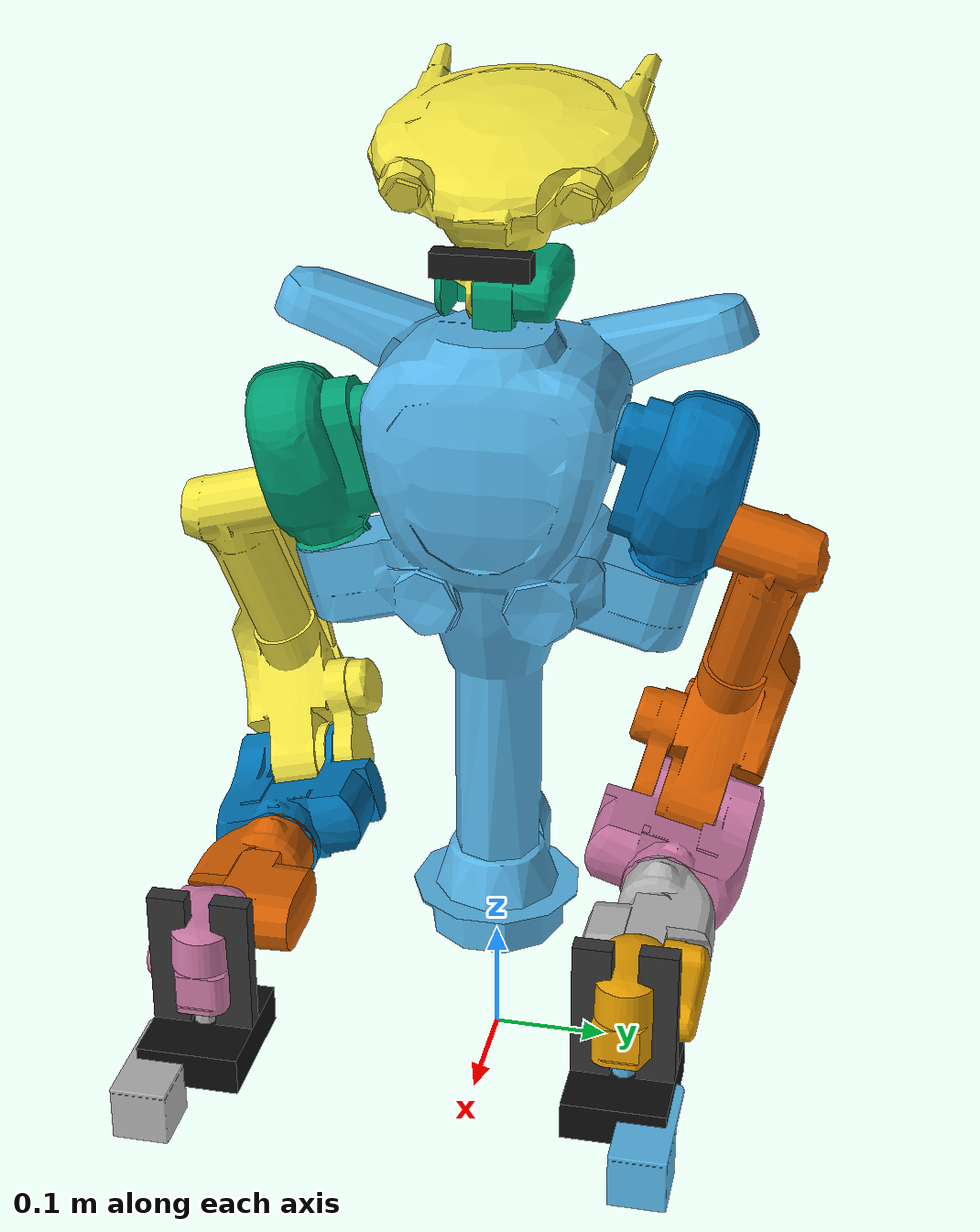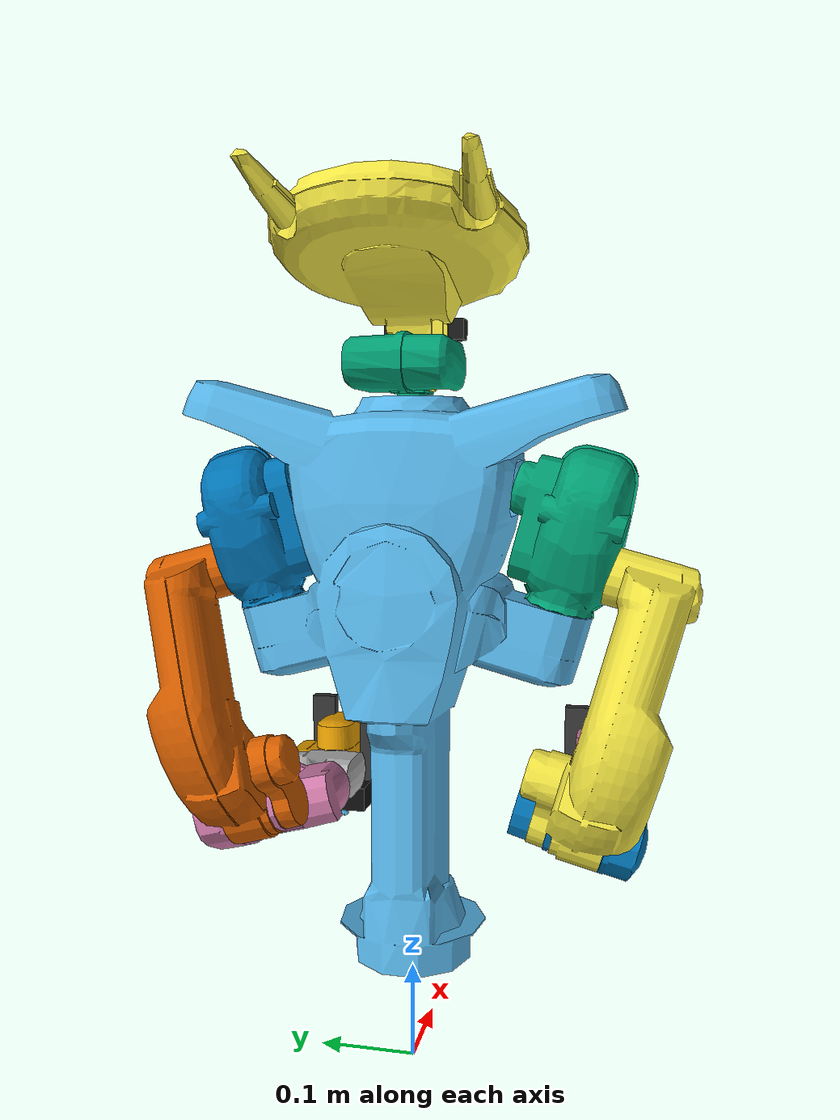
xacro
<?xml version="1.0"?>
<robot xmlns:xacro="http://www.ros.org/wiki/xacro" name="NEXTAGE">
    <!-- Use $(find ...) for portable paths -->
    <xacro:arg name="initial_positions_file"
               default="$(find kawada_moveit_config)/config/initial_positions.yaml" />

    <!-- Set to true if using Gazebo, false for fake hardware -->
    <xacro:arg name="use_gazebo" default="true" />

    <!-- Conditionally include Gazebo plugin only if using Gazebo -->
    <xacro:if value="$(arg use_gazebo)">
        <gazebo>
            <plugin filename="ign_ros2_control-system"
                    name="ign_ros2_control::IgnitionROS2ControlPlugin">
                <parameters>$(find kawada_moveit_config)/config/ros_controllers.yaml</parameters>
            </plugin>
        </gazebo>
    </xacro:if>

    <!-- Import NEXTAGE urdf file -->
    <xacro:include filename="$(find nextage_fillie_open_description)/urdf/FillieOpen.urdf" />

    <!-- Import cameras -->
    <xacro:include filename="$(find kawada_moveit_config)/config/cameras.xacro"/>

    <!-- Import new gripper -->
    <xacro:include filename="$(find nextage_fillie_open_description)/urdf/robotiq_2f_140_gripper.xacro"/>

    <!-- Import ros2_control macros -->
    <xacro:include filename="$(find kawada_moveit_config)/config/NEXTAGE.ros2_control.xacro"/>
    <xacro:include filename="$(find kawada_moveit_config)/config/NEXTAGE_Left.ros2_control.xacro"/>

    <!-- Instantiate the ros2_control macros for both arms -->
    <xacro:NEXTAGE_ros2_control
        name="RightArmSystem"
        initial_positions_file="$(arg initial_positions_file)"/>

    <xacro:NEXTAGE_Left_ros2_control
        name="LeftArmSystem"
        initial_positions_file="$(arg initial_positions_file)"/>

    <!-- Add grippers to both arms -->
    <xacro:robotiq_gripper prefix="right" parent="RARM_JOINT5_Link">
        <origin xyz="0 0 0" rpy="0 0 0"/>
    </xacro:robotiq_gripper>

    <xacro:robotiq_gripper prefix="left" parent="LARM_JOINT5_Link">
        <origin xyz="0 0 0" rpy="0 0 0"/>
    </xacro:robotiq_gripper>

</robot>

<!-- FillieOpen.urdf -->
<robot name="NEXTAGE"
			 xmlns:xi="http://www.w3.org/2001/xinclude"
			 xmlns:gazebo="http://playerstage.sourceforge.net/gazebo/xmlschema/#gz"
			 xmlns:model="http://playerstage.sourceforge.net/gazebo/xmlschema/#model"
			 xmlns:sensor="http://playerstage.sourceforge.net/gazebo/xmlschema/#sensor"
			 xmlns:body="http://playerstage.sourceforge.net/gazebo/xmlschema/#body"
			 xmlns:geom="http://playerstage.sourceforge.net/gazebo/xmlschema/#geom"
			 xmlns:joint="http://playerstage.sourceforge.net/gazebo/xmlschema/#joint"
			 xmlns:interface="http://playerstage.sourceforge.net/gazebo/xmlschema/#interface"
			 xmlns:rendering="http://playerstage.sourceforge.net/gazebo/xmlschema/#rendering"
			 xmlns:renderable="http://playerstage.sourceforge.net/gazebo/xmlschema/#renderable"
			 xmlns:controller="http://playerstage.sourceforge.net/gazebo/xmlschema/#controller"
			 xmlns:physics="http://playerstage.sourceforge.net/gazebo/xmlschema/#physics"
			 xmlns:xacro="http://www.ros.org/wiki/xacro">
	<xacro:include filename="$(find nextage_fillie_open_description)/urdf/materials.urdf.xacro" />

	<!-- Used for fixing robot to Gazebo 'base_link' -->
	<link name="world"/>
	<joint name="fixed" type="fixed">
		 <parent link="world"/>
		 <child link="CHEST_JOINT0_Link"/>
	</joint>

	<link name="CHEST_JOINT0_Link">
		<visual>
			<origin xyz="0 0 0" rpy="0 0 0"/>
			<geometry>
				<mesh filename="file://$(find nextage_fillie_open_description)/urdf/meshes/visual/CHEST_JOINT0_Link_mesh.obj"/>
			</geometry>
		</visual>
		<collision>
			<origin xyz="0 0 0" rpy="0 0 0"/>
			<geometry>
				<mesh filename="file://$(find nextage_fillie_open_description)/urdf/meshes/CHEST_JOINT0_Link_mesh.dae"/>
			</geometry>
		</collision>
			 <inertial>
			<mass value="5.719" />
			<origin xyz="0 0 0" rpy="0 -0 0"/>
			<inertia ixx="0.0639575" ixy="-0.00022833" ixz="0.00011172" iyy="0.0310845" iyz="6.48e-05" izz="0.0501107"/>
		</inertial>
	</link>

	<link name="HEAD_JOINT0_Link">
		<visual>
			<origin xyz="0 0 0" rpy="0 0 0"/>
			<geometry>
				<mesh filename="file://$(find nextage_fillie_open_description)/urdf/meshes/visual/HEAD_JOINT0_Link_mesh.obj"/>
			</geometry>
		</visual>
		<collision>
			<origin xyz="0 0 0" rpy="0 0 0"/>
			<geometry>
				<mesh filename="file://$(find nextage_fillie_open_description)/urdf/meshes/HEAD_JOINT0_Link_mesh.dae"/>
			</geometry>
		</collision>
		 <inertial>
			<mass value="0.317929" />
			<origin xyz="-2.292e-05 0.00547848 -0.00784016" rpy="0 -0 0"/>
			<inertia ixx="0.00027682" ixy="3e-08" ixz="-3.3e-07" iyy="0.00013009" iyz="-1.092e-05" izz="0.00020954"/>
		</inertial>
	</link>

	<link name="HEAD_JOINT1_Link">
		<visual>
			<origin xyz="0 0 0" rpy="0 0 0"/>
			<geometry>
				<mesh filename="file://$(find nextage_fillie_open_description)/urdf/meshes/visual/HEAD_JOINT1_Link_mesh.obj"/>
			</geometry>
		</visual>
		<collision>
			<origin xyz="0 0 0" rpy="0 0 0"/>
			<geometry>
				<mesh filename="file://$(find nextage_fillie_open_description)/urdf/meshes/HEAD_JOINT1_Link_mesh.dae"/>
			</geometry>
		</collision>
		<inertial>
			<mass value="0.0808593" />
			<inertia ixx="1e-3" ixy="0" ixz="0" iyy="1e-3" iyz="0" izz="1e-3"/>
		</inertial>
	</link>

	<link name="LARM_JOINT0_Link">
		<visual>
			<origin xyz="0 0 0" rpy="0 0 0"/>
			<geometry>
				<mesh filename="file://$(find nextage_fillie_open_description)/urdf/meshes/visual/LARM_JOINT0_Link_mesh.obj"/>
			</geometry>
		</visual>
		<collision>
			<origin xyz="0 0 0" rpy="0 0 0"/>
			<geometry>
				<mesh filename="file://$(find nextage_fillie_open_description)/urdf/meshes/LARM_JOINT0_Link_mesh.dae"/>
			</geometry>
		</collision>
			<inertial>
			<mass value="1.32626" />
			<origin xyz="-0.00226388 -0.00521383 0.0156081" rpy="0 -0 0"/>
			<inertia ixx="0.00207537" ixy="0.00011276" ixz="8.927e-05" iyy="0.00240295" iyz="-4.57e-05" izz="0.00141912"/>
		</inertial>
	</link>

	<link name="LARM_JOINT1_Link">
		<visual>
			<origin xyz="0 0 0" rpy="0 0 0"/>
			<geometry>
				<mesh filename="file://$(find nextage_fillie_open_description)/urdf/meshes/visual/LARM_JOINT1_Link_mesh.obj"/>
			</geometry>
		</visual>
		<collision>
			<origin xyz="0 0 0" rpy="0 0 0"/>
			<geometry>
				<mesh filename="file://$(find nextage_fillie_open_description)/urdf/meshes/LARM_JOINT1_Link_mesh.dae"/>
			</geometry>
		</collision>
		 <inertial>
			<mass value="1.14898" />
			<origin xyz="-5.236e-05 0.0583134 -0.107061" rpy="0 -0 0"/>
			<inertia ixx="0.0154168" ixy="9.95417e-07" ixz="3.38147e-06" iyy="0.0147117" iyz="0.00213719" izz="0.0012658"/>
		</inertial>
	</link>

	<link name="LARM_JOINT2_Link">
		<visual>
			<origin xyz="0 0 0" rpy="0 0 0"/>
			<geometry>
				<mesh filename="file://$(find nextage_fillie_open_description)/urdf/meshes/visual/LARM_JOINT2_Link_mesh.obj"/>
			</geometry>
		</visual>
		<collision>
			<origin xyz="0 0 0" rpy="0 0 0"/>
			<geometry>
				<mesh filename="file://$(find nextage_fillie_open_description)/urdf/meshes/LARM_JOINT2_Link_mesh.dae"/>
			</geometry>
		</collision>
			<inertial>
			<mass value="0.577518" />
			<origin xyz="-2.254e-05 0.00167107 -0.0715116" rpy="0 -0 0"/>
			<inertia ixx="0.00143966" ixy="-3e-07" ixz="1.2e-06" iyy="0.00141763" iyz="-7.596e-05" izz="0.0001972"/>
		</inertial>
	</link>

	<link name="LARM_JOINT3_Link">
		<visual>
			<origin xyz="0 0 0" rpy="0 0 0"/>
			<geometry>
				<mesh filename="file://$(find nextage_fillie_open_description)/urdf/meshes/visual/LARM_JOINT3_Link_mesh.obj"/>
			</geometry>
		</visual>
		<collision>
			<origin xyz="0 0 0" rpy="0 0 0"/>
			<geometry>
				<mesh filename="file://$(find nextage_fillie_open_description)/urdf/meshes/LARM_JOINT3_Link_mesh.dae"/>
			</geometry>
		</collision>
			<inertial>
			<mass value="0.457418" />
			<origin xyz="-1.788e-05 -0.00395812 -0.20273" rpy="0 -0 0"/>
			<inertia ixx="0.00069205" ixy="3e-08" ixz="5.2e-07" iyy="0.00068903" iyz="-1.915e-05" izz="0.00013509"/>
		</inertial>
	</link>

	<link name="LARM_JOINT4_Link">
		<visual>
			<origin xyz="0 0 0" rpy="0 0 0"/>
			<geometry>
				<mesh filename="file://$(find nextage_fillie_open_description)/urdf/meshes/visual/LARM_JOINT4_Link_mesh.obj"/>
			</geometry>
		</visual>
		<collision>
			<origin xyz="0 0 0" rpy="0 0 0"/>
			<geometry>
				<mesh filename="file://$(find nextage_fillie_open_description)/urdf/meshes/LARM_JOINT4_Link_mesh.dae"/>
			</geometry>
		</collision>
		<inertial>
			<mass value="0.418434" />
			<origin xyz="0.00243131 0.00379733 -0.0577036" rpy="0 -0 0"/>
			<inertia ixx="0.00052016" ixy="1.69e-06" ixz="7.9e-06" iyy="0.00050569" iyz="-5.377e-05" izz="0.00014004"/>
		</inertial>
	</link>

	<link name="LARM_JOINT5_Link">
		<visual>
			<origin xyz="0 0 0" rpy="0 0 0"/>
			<geometry>
				<mesh filename="file://$(find nextage_fillie_open_description)/urdf/meshes/visual/LARM_JOINT5_Link_mesh.obj"/>
			</geometry>
		</visual>
		<visual>
			<origin xyz="0 0 0" rpy="0 0 0"/>
			<geometry>
				<mesh filename="file://$(find nextage_fillie_open_description)/urdf/meshes/visual/L_CAM.obj"/>
			</geometry>
		</visual>
		<collision>
			<origin xyz="0 0 0" rpy="0 0 0"/>
			<geometry>
				<mesh filename="file://$(find nextage_fillie_open_description)/urdf/meshes/visual/LARM_JOINT5_Link_mesh.obj"/>
			</geometry>
		</collision>
		<collision>
			<origin xyz="0 0 0" rpy="0 0 0"/>
			<geometry>
				<mesh filename="file://$(find nextage_fillie_open_description)/urdf/meshes/L_CAM.dae"/>
			</geometry>
		</collision>
			<inertial>
			<mass value="1.05156" />
			<origin xyz="-0.048476 -3.2e-06 -0.0388988" rpy="0 -0 0"/>
			<inertia ixx="0.00194072" ixy="1.1e-07" ixz="-0.00042482" iyy="0.00209392" iyz="1.2e-07" izz="0.00035788"/>
		</inertial>
	</link>

	<link name="RARM_JOINT0_Link">
		<visual>
			<origin xyz="0 0 0" rpy="0 0 0"/>
			<geometry>
				<mesh filename="file://$(find nextage_fillie_open_description)/urdf/meshes/visual/RARM_JOINT0_Link_mesh.obj"/>
			</geometry>
		</visual>
		<collision>
			<origin xyz="0 0 0" rpy="0 0 0"/>
			<geometry>
				<mesh filename="file://$(find nextage_fillie_open_description)/urdf/meshes/RARM_JOINT0_Link_mesh.dae"/>
			</geometry>
		</collision>
			 <inertial>
			<mass value="1.32626" />
			<origin xyz="-0.00226388 0.00521383 0.0156081" rpy="0 -0 0"/>
			<inertia ixx="0.00207537" ixy="-0.00011276" ixz="8.927e-05" iyy="0.00240295" iyz="4.57e-05" izz="0.00141912"/>
		</inertial>
	</link>

	<link name="RARM_JOINT1_Link">
		<visual>
			<origin xyz="0 0 0" rpy="0 0 0"/>
			<geometry>
				<mesh filename="file://$(find nextage_fillie_open_description)/urdf/meshes/visual/RARM_JOINT1_Link_mesh.obj"/>
			</geometry>
		</visual>
		<collision>
			<origin xyz="0 0 0" rpy="0 0 0"/>
			<geometry>
				<mesh filename="file://$(find nextage_fillie_open_description)/urdf/meshes/RARM_JOINT1_Link_mesh.dae"/>
			</geometry>
		</collision>
		 <inertial>
			<mass value="1.14898" />
			<origin xyz="-5.236e-05 -0.0583134 -0.107061" rpy="0 -0 0"/>
			<inertia ixx="0.0154168" ixy="-9.95417e-07" ixz="3.38147e-06" iyy="0.0147117" iyz="-0.00213719" izz="0.0012658"/>
		</inertial>
	</link>

	<link name="RARM_JOINT2_Link">
		<visual>
			<origin xyz="0 0 0" rpy="0 0 0"/>
			<geometry>
				<mesh filename="file://$(find nextage_fillie_open_description)/urdf/meshes/RARM_JOINT2_Link_mesh.dae"/>
			</geometry>
		</visual>
		<collision>
			<origin xyz="0 0 0" rpy="0 0 0"/>
			<geometry>
				<mesh filename="file://$(find nextage_fillie_open_description)/urdf/meshes/RARM_JOINT2_Link_mesh.dae"/>
			</geometry>
		</collision>
		 <inertial>
			<mass value="0.577518" />
			<origin xyz="-2.254e-05 -0.00167107 -0.0715116" rpy="0 -0 0"/>
			<inertia ixx="0.00143966" ixy="3e-07" ixz="1.2e-06" iyy="0.00141763" iyz="7.596e-05" izz="0.0001972"/>
		</inertial>
	</link>

	<link name="RARM_JOINT3_Link">
		<visual>
			<origin xyz="0 0 0" rpy="0 0 0"/>
			<geometry>
				<mesh filename="file://$(find nextage_fillie_open_description)/urdf/meshes/visual/RARM_JOINT3_Link_mesh.obj"/>
			</geometry>
		</visual>
		<collision>
			<origin xyz="0 0 0" rpy="0 0 0"/>
			<geometry>
				<mesh filename="file://$(find nextage_fillie_open_description)/urdf/meshes/RARM_JOINT3_Link_mesh.dae"/>
			</geometry>
		</collision>
			<inertial>
			<mass value="0.457418" />
			<origin xyz="-1.788e-05 0.00395812 -0.20273" rpy="0 -0 0"/>
			<inertia ixx="0.00069205" ixy="-3e-08" ixz="5.2e-07" iyy="0.00068903" iyz="1.915e-05" izz="0.00013509"/>
		</inertial>
	</link>

	<link name="RARM_JOINT4_Link">
		<visual>
			<origin xyz="0 0 0" rpy="0 0 0"/>
			<geometry>
				<mesh filename="file://$(find nextage_fillie_open_description)/urdf/meshes/visual/RARM_JOINT4_Link_mesh.obj"/>
			</geometry>
		</visual>
		<collision>
			<origin xyz="0 0 0" rpy="0 0 0"/>
			<geometry>
				<mesh filename="file://$(find nextage_fillie_open_description)/urdf/meshes/RARM_JOINT4_Link_mesh.dae"/>
			</geometry>
		</collision>
		<inertial>
			<mass value="0.418434" />
			<origin xyz="0.00243131 -0.00379733 -0.0577036" rpy="0 -0 0"/>
			<inertia ixx="0.00052016" ixy="-1.69e-06" ixz="7.9e-06" iyy="0.00050569" iyz="5.377e-05" izz="0.00014004"/>
		</inertial>
	</link>

	<link name="RARM_JOINT5_Link">
		<visual>
			<origin xyz="0 0 0" rpy="0 0 0"/>
			<geometry>
				<mesh filename="file://$(find nextage_fillie_open_description)/urdf/meshes/visual/RARM_JOINT5_Link_mesh.obj"/>
			</geometry>
		</visual>
		<visual>
			<origin xyz="0 0 0" rpy="0 0 0"/>
			<geometry>
				<mesh filename="file://$(find nextage_fillie_open_description)/urdf/meshes/visual/R_CAM.obj"/>
			</geometry>
		</visual>
		<collision>
			<origin xyz="0 0 0" rpy="0 0 0"/>
			<geometry>
				<mesh filename="file://$(find nextage_fillie_open_description)/urdf/meshes/visual/RARM_JOINT5_Link_mesh.obj"/>
			</geometry>
		</collision>
		<collision>
			<origin xyz="0 0 0" rpy="0 0 0"/>
			<geometry>
				<mesh filename="file://$(find nextage_fillie_open_description)/urdf/meshes/R_CAM.dae"/>
			</geometry>
		</collision>
			<inertial>
			<mass value="1.05156" />
			<origin xyz="-0.048476 3.2e-06 -0.0388988" rpy="0 -0 0"/>
			<inertia ixx="0.00194072" ixy="-1.1e-07" ixz="-0.00042482" iyy="0.00209392" iyz="-1.2e-07" izz="0.00035788"/>
		</inertial>
	</link>

	<joint name="HEAD_JOINT0" type="fixed">
		<parent link="CHEST_JOINT0_Link"/>
		<child link="HEAD_JOINT0_Link"/>
		<origin xyz="0 0 0.705" rpy="0 0 0"/>
		<axis xyz="0 0 1"/>
		<limit lower="-1.570796327" upper="1.570796327" effort="100" velocity="1.0"/>
	</joint>

	<joint name="HEAD_JOINT1" type="fixed">
		<parent link="HEAD_JOINT0_Link"/>
		<child link="HEAD_JOINT1_Link"/>
		<origin xyz="0 0 0.0" rpy="0 0 0"/>
		<axis xyz="0 1 0"/>
		<limit lower="-0.401425728" upper="1.308996939" effort="100" velocity="1.0"/>
	</joint>

	<joint name="LARM_JOINT0" type="revolute">
		<parent link="CHEST_JOINT0_Link"/>
		<child link="LARM_JOINT0_Link"/>
		<origin xyz="0.0 0.155 0.520" rpy="-0.26179938779914941 0 0"/>
		<axis xyz="0 0 1"/>
		<limit lower="-1.570796327" upper="1.570796327" effort="150" velocity="1.0"/>
	</joint>

	<joint name="LARM_JOINT1" type="revolute">
		<parent link="LARM_JOINT0_Link"/>
		<child link="LARM_JOINT1_Link"/>
		<origin xyz="0 0.0 0.0" rpy="0 0 0"/>
		<axis xyz="0 1 0"/>
		<limit lower="-2.443460953" upper="1.570796327" effort="150" velocity="1.0"/>
	</joint>

	<joint name="LARM_JOINT2" type="revolute">
		<parent link="LARM_JOINT1_Link"/>
		<child link="LARM_JOINT2_Link"/>
		<origin xyz="0 0.083 -0.250" rpy="0 0 0"/>
		<axis xyz="0 1 0"/>
		<limit lower="-1.221730476" upper="1.570796327" effort="150" velocity="1.0"/>
	</joint>

	<joint name="LARM_JOINT3" type="revolute">
		<parent link="LARM_JOINT2_Link"/>
		<child link="LARM_JOINT3_Link"/>
		<origin xyz="0 0 -0.02" rpy="0.26179938779914941 0 0"/>
		<axis xyz="1 0 0"/>
		<limit lower="-3.141592654" upper="1.745329252" effort="150" velocity="1.0"/>
	</joint>

	<joint name="LARM_JOINT4" type="revolute">
		<parent link="LARM_JOINT3_Link"/>
		<child link="LARM_JOINT4_Link"/>
		<origin xyz="0.230 0 0" rpy="0 0 0"/>
		<axis xyz="0 1 0"/>
		<limit lower="-1.570796327" upper="1.570796327" effort="150" velocity="1.0"/>
	</joint>

	<joint name="LARM_JOINT5" type="revolute">
		<parent link="LARM_JOINT4_Link"/>
		<child link="LARM_JOINT5_Link"/>
		<origin xyz="0.090 0 -0.051" rpy="0 0 0"/>
		<axis xyz="0 0 1"/>
		<limit lower="-2.9670597283903604" upper="2.9670597283903604" effort="150" velocity="1.0"/>
	</joint>

	<joint name="RARM_JOINT0" type="revolute">
		<parent link="CHEST_JOINT0_Link"/>
		<child link="RARM_JOINT0_Link"/>
		<origin xyz="0.0 -0.155 0.520" rpy="0.26179938779914941 0 0"/>
		<axis xyz="0 0 1"/>
		<limit lower="-1.570796327" upper="1.570796327" effort="150" velocity="100.0"/>
	</joint>

	<joint name="RARM_JOINT1" type="revolute">
		<parent link="RARM_JOINT0_Link"/>
		<child link="RARM_JOINT1_Link"/>
		<origin xyz="0 0 0" rpy="0 0 0"/>
		<axis xyz="0 1 0"/>
		<limit lower="-2.443460953" upper="1.570796327" effort="150" velocity="100.0"/>
	</joint>

	<joint name="RARM_JOINT2" type="revolute">
		<parent link="RARM_JOINT1_Link"/>
		<child link="RARM_JOINT2_Link"/>
		<origin xyz="0 -0.083 -0.250" rpy="0 0 0"/>
		<axis xyz="0 1 0"/>
		<limit lower="-1.221730476" upper="1.570796327" effort="150" velocity="100.0"/>
	</joint>

	<joint name="RARM_JOINT3" type="revolute">
		<parent link="RARM_JOINT2_Link"/>
		<child link="RARM_JOINT3_Link"/>
		<origin xyz="0 0 -0.02" rpy="-0.26179938779914941 0 0"/>
		<axis xyz="1 0 0"/>
		<limit lower="-1.745329252" upper="3.141592654" effort="150" velocity="100.0"/>
	</joint>

	<joint name="RARM_JOINT4" type="revolute">
		<parent link="RARM_JOINT3_Link"/>
		<child link="RARM_JOINT4_Link"/>
		<origin xyz="0.230 0 0" rpy="0 0 0"/>
		<axis xyz="0 1 0"/>
		<limit lower="-1.570796327" upper="1.570796327" effort="150" velocity="100.0"/>
	</joint>

	<joint name="RARM_JOINT5" type="revolute">
		<parent link="RARM_JOINT4_Link"/>
		<child link="RARM_JOINT5_Link"/>
		<origin xyz="0.090 0 -0.051" rpy="0 0 0"/>
		<axis xyz="0 0 1"/>
		<limit lower="-2.9670597283903604" upper="2.9670597283903604" effort="150" velocity="100.0"/>
	</joint>

	<!-- Gazebo plugin for ROS Control -->

</robot>

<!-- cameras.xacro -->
<robot xmlns:xacro="http://www.ros.org/wiki/xacro">

  <!-- RGB Camera Sensor on Head -->
  <gazebo reference="HEAD_JOINT1_Link">
    <sensor name="head_camera" type="camera">
      <!-- Pose: x y z roll pitch yaw - tilted down 30 degrees (0.52 rad) to see workspace -->
      <pose>0.05 0 0.05 0 0.52 0</pose>
      <camera>
        <horizontal_fov>1.047</horizontal_fov>
        <image>
          <width>640</width>
          <height>480</height>
          <format>R8G8B8</format>
        </image>
        <clip>
          <near>0.1</near>
          <far>100</far>
        </clip>
      </camera>
      <always_on>1</always_on>
      <update_rate>30</update_rate>
      <visualize>true</visualize>
      <topic>head_camera/image</topic>
    </sensor>
  </gazebo>

  <!-- RGBD Camera Link -->
  <link name="rgbd_camera_link">
    <visual>
      <origin xyz="0 0 0" rpy="0 0 0"/>
      <geometry>
        <box size="0.02 0.08 0.02"/>
      </geometry>
      <material name="camera_material">
        <color rgba="0.1 0.1 0.1 1.0"/>
      </material>
    </visual>
    <collision>
      <origin xyz="0 0 0" rpy="0 0 0"/>
      <geometry>
        <box size="0.02 0.08 0.02"/>
      </geometry>
    </collision>
    <inertial>
      <mass value="0.01"/>
      <origin xyz="0 0 0" rpy="0 0 0"/>
      <inertia ixx="0.0001" ixy="0" ixz="0" iyy="0.0001" iyz="0" izz="0.0001"/>
    </inertial>
  </link>

  <!-- RGBD Camera Joint -->
  <joint name="rgbd_camera_joint" type="fixed">
    <parent link="HEAD_JOINT1_Link"/>
    <child link="rgbd_camera_link"/>
    <origin xyz="0.06 0 0.04" rpy="0 0 0"/>
  </joint>

  <!-- RGBD Camera Optical Frame -->
  <link name="rgbd_camera_optical_link"/>

  <joint name="rgbd_camera_optical_joint" type="fixed">
    <parent link="rgbd_camera_link"/>
    <child link="rgbd_camera_optical_link"/>
    <origin xyz="0 0 0" rpy="${-pi/2} 0 ${-pi/2}"/>
  </joint>

  <!-- RGBD Camera Sensor - Use rgbd_camera type for Ignition Fortress -->
  <gazebo reference="rgbd_camera_link">
    <sensor name="rgbd_camera" type="rgbd_camera">
      <!-- Pose: x y z roll pitch yaw - tilted down 30 degrees (0.52 rad) to see workspace -->
      <pose>0 0 0 0 0.52 0</pose>
      <camera>
        <horizontal_fov>1.047</horizontal_fov>
        <image>
          <width>640</width>
          <height>480</height>
          <format>R8G8B8</format>
        </image>
        <clip>
          <near>0.1</near>
          <far>10.0</far>
        </clip>
      </camera>
      <always_on>1</always_on>
      <update_rate>30</update_rate>
      <visualize>true</visualize>
      <topic>rgbd_camera</topic>
    </sensor>
  </gazebo>

</robot>

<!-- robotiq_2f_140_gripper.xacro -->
<robot xmlns:xacro="http://www.ros.org/wiki/xacro">

  <xacro:macro name="robotiq_gripper" params="prefix parent *origin">

    <!-- Main Gripper Base Link -->
    <link name="${prefix}_gripper_link">
      <visual>
        <origin xyz="0.0 0.0 0.0" rpy="0.0 0.0 0.0" />
        <geometry>
          <box size="0.10 0.08 0.03"/>
        </geometry>
        <material name="black">
          <color rgba="0.05 0.05 0.05 1"/>
        </material>
      </visual>
      <collision>
        <origin xyz="0.0 0.0 0.0" rpy="0.0 0.0 0.0" />
        <geometry>
          <box size="0.10 0.08 0.03"/>
        </geometry>
      </collision>
      <inertial>
        <mass value="0.5"/>
        <origin xyz="0 0 0" rpy="0 0 0"/>
        <inertia ixx="0.001" ixy="0" ixz="0" iyy="0.001" iyz="0" izz="0.001"/>
      </inertial>
    </link>

    <joint name="${prefix}_gripper_base_joint" type="fixed">
      <xacro:insert_block name="origin"/>
      <parent link="${parent}"/>
      <child link="${prefix}_gripper_link"/>
    </joint>

    <!-- Left Finger -->
    <link name="${prefix}_left_finger">
      <visual>
        <origin xyz="0 0 0.055" rpy="0 0 0"/>
        <geometry>
          <box size="0.015 0.03 0.11"/>
        </geometry>
        <material name="dark_grey">
          <color rgba="0.2 0.2 0.2 1.0"/>
        </material>
      </visual>
      <collision>
        <origin xyz="0 0 0.055" rpy="0 0 0"/>
        <geometry>
          <box size="0.015 0.03 0.11"/>
        </geometry>
      </collision>
      <inertial>
        <mass value="0.1"/>
        <origin xyz="0 0 0.055" rpy="0 0 0"/>
        <inertia ixx="0.0001" ixy="0" ixz="0" iyy="0.0001" iyz="0" izz="0.00001"/>
      </inertial>
    </link>

    <!-- Gazebo friction properties for left finger -->
    <gazebo reference="${prefix}_left_finger">
      <mu1>100.0</mu1>
      <mu2>100.0</mu2>
      <kp>1e10</kp>
      <kd>1000</kd>
      <minDepth>0.001</minDepth>
      <maxContacts>20</maxContacts>
    </gazebo>

    <joint name="${prefix}_left_finger_joint" type="prismatic">
      <origin xyz="0 0.025 0.015" rpy="0 0 0"/>
      <parent link="${prefix}_gripper_link"/>
      <child link="${prefix}_left_finger"/>
      <axis xyz="0 1 0"/>
      <limit lower="0.0" upper="0.07" effort="300" velocity="0.5"/>
      <dynamics damping="20.0" friction="2.0"/>
    </joint>

    <!-- Right Finger -->
    <link name="${prefix}_right_finger">
      <visual>
        <origin xyz="0 0 0.055" rpy="0 0 0"/>
        <geometry>
          <box size="0.015 0.03 0.11"/>
        </geometry>
        <material name="dark_grey">
          <color rgba="0.2 0.2 0.2 1.0"/>
        </material>
      </visual>
      <collision>
        <origin xyz="0 0 0.055" rpy="0 0 0"/>
        <geometry>
          <box size="0.015 0.03 0.11"/>
        </geometry>
      </collision>
      <inertial>
        <mass value="0.1"/>
        <origin xyz="0 0 0.055" rpy="0 0 0"/>
        <inertia ixx="0.0001" ixy="0" ixz="0" iyy="0.0001" iyz="0" izz="0.00001"/>
      </inertial>
    </link>

    <!-- Gazebo friction properties for right finger -->
    <gazebo reference="${prefix}_right_finger">
      <mu1>100.0</mu1>
      <mu2>100.0</mu2>
      <kp>1e10</kp>
      <kd>1000</kd>
      <minDepth>0.001</minDepth>
      <maxContacts>20</maxContacts>
    </gazebo>

    <joint name="${prefix}_right_finger_joint" type="prismatic">
      <origin xyz="0 -0.025 0.015" rpy="0 0 0"/>
      <parent link="${prefix}_gripper_link"/>
      <child link="${prefix}_right_finger"/>
      <axis xyz="0 1 0"/>
      <limit lower="-0.07" upper="0.0" effort="300" velocity="0.5"/>
      <dynamics damping="20.0" friction="2.0"/>
      <mimic joint="${prefix}_left_finger_joint" multiplier="-1" offset="0"/>
    </joint>

    <!-- Gripper Tool Center Point (TCP) -->
    <link name="${prefix}_gripper_tcp"/>

    <joint name="${prefix}_gripper_tcp_joint" type="fixed">
      <origin xyz="0 0 0.13" rpy="0 0 0"/>
      <parent link="${prefix}_gripper_link"/>
      <child link="${prefix}_gripper_tcp"/>
    </joint>

  </xacro:macro>

</robot>
